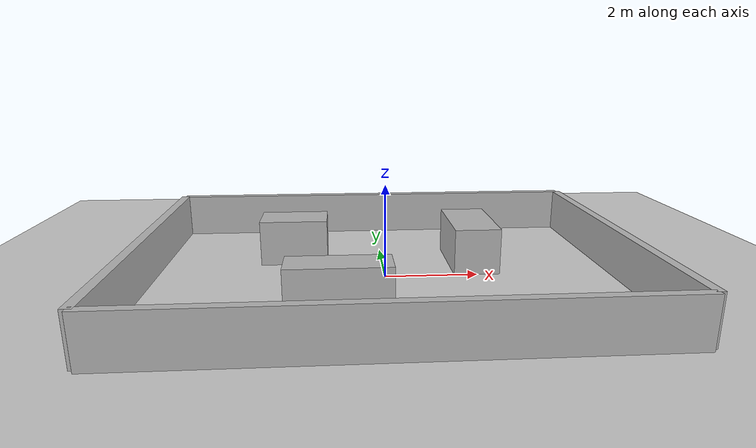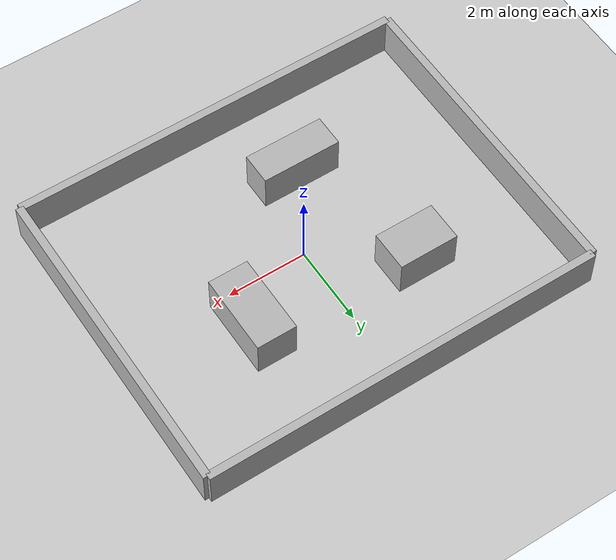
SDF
<?xml version="1.0" ?>
<sdf version="1.6">
  <world name="final_world">

    <!-- Sun -->
    <include>
      <uri>model://sun</uri>
    </include>

    <!-- Ground -->
    <include>
      <uri>model://ground_plane</uri>
    </include>

    <!-- Outer walls -->

    <!-- North wall -->
    <model name="north_wall">
      <static>true</static>
      <pose>0 4 0.5 0 0 0</pose>
      <link name="link">
        <collision name="collision">
          <geometry>
            <box><size>10 0.2 1</size></box>
          </geometry>
        </collision>
        <visual name="visual">
          <geometry>
            <box><size>10 0.2 1</size></box>
          </geometry>
        </visual>
      </link>
    </model>

    <!-- South wall -->
    <model name="south_wall">
      <static>true</static>
      <pose>0 -4 0.5 0 0 0</pose>
      <link name="link">
        <collision name="collision">
          <geometry>
            <box><size>10 0.2 1</size></box>
          </geometry>
        </collision>
        <visual name="visual">
          <geometry>
            <box><size>10 0.2 1</size></box>
          </geometry>
        </visual>
      </link>
    </model>

    <!-- East wall -->
    <model name="east_wall">
      <static>true</static>
      <pose>5 0 0.5 0 0 0</pose>
      <link name="link">
        <collision name="collision">
          <geometry>
            <box><size>0.2 8 1</size></box>
          </geometry>
        </collision>
        <visual name="visual">
          <geometry>
            <box><size>0.2 8 1</size></box>
          </geometry>
        </visual>
      </link>
    </model>

    <!-- West wall -->
    <model name="west_wall">
      <static>true</static>
      <pose>-5 0 0.5 0 0 0</pose>
      <link name="link">
        <collision name="collision">
          <geometry>
            <box><size>0.2 8 1</size></box>
          </geometry>
        </collision>
        <visual name="visual">
          <geometry>
            <box><size>0.2 8 1</size></box>
          </geometry>
        </visual>
      </link>
    </model>

    <!-- Obstacles -->

    <!-- Obstacle 1 -->
    <model name="box_1">
      <static>true</static>
      <pose>-2 1.5 0.5 0 0 0</pose>
      <link name="link">
        <collision name="collision">
          <geometry>
            <box><size>1.5 1 1</size></box>
          </geometry>
        </collision>
        <visual name="visual">
          <geometry>
            <box><size>1.5 1 1</size></box>
          </geometry>
        </visual>
      </link>
    </model>

    <!-- Obstacle 2 -->
    <model name="box_2">
      <static>true</static>
      <pose>2 1 0.5 0 0 0</pose>
      <link name="link">
        <collision name="collision">
          <geometry>
            <box><size>1 2 1</size></box>
          </geometry>
        </collision>
        <visual name="visual">
          <geometry>
            <box><size>1 2 1</size></box>
          </geometry>
        </visual>
      </link>
    </model>

    <!-- Obstacle 3 -->
    <model name="box_3">
      <static>true</static>
      <pose>-1 -2 0.5 0 0 0</pose>
      <link name="link">
        <collision name="collision">
          <geometry>
            <box><size>2 0.8 1</size></box>
          </geometry>
        </collision>
        <visual name="visual">
          <geometry>
            <box><size>2 0.8 1</size></box>
          </geometry>
        </visual>
      </link>
    </model>

  </world>
</sdf>
